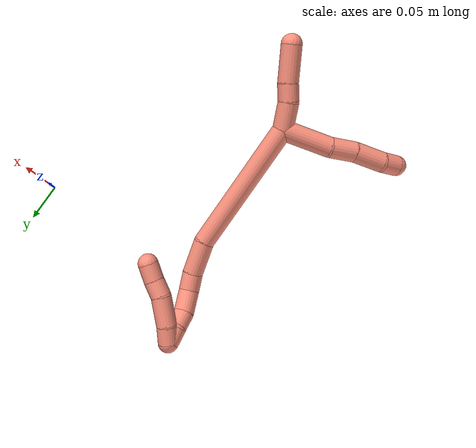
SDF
<sdf version="1.7">
 <world name="default">
  <model name="16">
   <static>0</static>
   <link name="16">
    <collision name="collision-cylinder-e_1_2_8">
     <pose>-0.026372 -0.008261 -0.012032 2.53996 -1.06533 -2.17273</pose>
     <geometry><cylinder><radius>0.0125</radius><length>0.060283</length></cylinder></geometry>
     <surface>
      <friction><ode><mu>1.16</mu><mu2>1.16</mu2><slip1>0</slip1><slip2>0</slip2></ode></friction>
      <contact><ode><kp>1e+06</kp><kd>1</kd><max_vel>0</max_vel><min_depth>0.001</min_depth></ode></contact>
     </surface>
    </collision>
    <visual name="visual-cylinder-e_1_2_8">
     <pose>-0.026372 -0.008261 -0.012032 2.53996 -1.06533 -2.17273</pose>
     <geometry><cylinder><radius>0.0125</radius><length>0.060283</length></cylinder></geometry>
     <material><ambient>1 0.576471 0.494118 1</ambient></material>
    </visual>
    <collision name="collision-cylinder-e_2_8_9">
     <pose>-0.06455 -0.023393 -0.031693 2.40833 -0.854977 -1.74093</pose>
     <geometry><cylinder><radius>0.0125</radius><length>0.031291</length></cylinder></geometry>
     <surface>
      <friction><ode><mu>1.16</mu><mu2>1.16</mu2><slip1>0</slip1><slip2>0</slip2></ode></friction>
      <contact><ode><kp>1e+06</kp><kd>1</kd><max_vel>0</max_vel><min_depth>0.001</min_depth></ode></contact>
     </surface>
    </collision>
    <visual name="visual-cylinder-e_2_8_9">
     <pose>-0.06455 -0.023393 -0.031693 2.40833 -0.854977 -1.74093</pose>
     <geometry><cylinder><radius>0.0125</radius><length>0.031291</length></cylinder></geometry>
     <material><ambient>1 0.576471 0.494118 1</ambient></material>
    </visual>
    <collision name="collision-cylinder-e_3_9_10">
     <pose>-0.091473 -0.035586 -0.048666 2.62392 -0.952512 -2.19318</pose>
     <geometry><cylinder><radius>0.0125</radius><length>0.037104</length></cylinder></geometry>
     <surface>
      <friction><ode><mu>1.16</mu><mu2>1.16</mu2><slip1>0</slip1><slip2>0</slip2></ode></friction>
      <contact><ode><kp>1e+06</kp><kd>1</kd><max_vel>0</max_vel><min_depth>0.001</min_depth></ode></contact>
     </surface>
    </collision>
    <visual name="visual-cylinder-e_3_9_10">
     <pose>-0.091473 -0.035586 -0.048666 2.62392 -0.952512 -2.19318</pose>
     <geometry><cylinder><radius>0.0125</radius><length>0.037104</length></cylinder></geometry>
     <material><ambient>1 0.576471 0.494118 1</ambient></material>
    </visual>
    <collision name="collision-cylinder-e_4_10_6">
     <pose>-0.11339 -0.045034 -0.065109 2.61504 -0.691617 -1.85701</pose>
     <geometry><cylinder><radius>0.0125</radius><length>0.021322</length></cylinder></geometry>
     <surface>
      <friction><ode><mu>1.16</mu><mu2>1.16</mu2><slip1>0</slip1><slip2>0</slip2></ode></friction>
      <contact><ode><kp>1e+06</kp><kd>1</kd><max_vel>0</max_vel><min_depth>0.001</min_depth></ode></contact>
     </surface>
    </collision>
    <visual name="visual-cylinder-e_4_10_6">
     <pose>-0.11339 -0.045034 -0.065109 2.61504 -0.691617 -1.85701</pose>
     <geometry><cylinder><radius>0.0125</radius><length>0.021322</length></cylinder></geometry>
     <material><ambient>1 0.576471 0.494118 1</ambient></material>
    </visual>
    <collision name="collision-cylinder-e_1_2_11">
     <pose>0.004817 -0.014521 0.006946 1.1246 0.290769 0.184012</pose>
     <geometry><cylinder><radius>0.0125</radius><length>0.033604</length></cylinder></geometry>
     <surface>
      <friction><ode><mu>1.16</mu><mu2>1.16</mu2><slip1>0</slip1><slip2>0</slip2></ode></friction>
      <contact><ode><kp>1e+06</kp><kd>1</kd><max_vel>0</max_vel><min_depth>0.001</min_depth></ode></contact>
     </surface>
    </collision>
    <visual name="visual-cylinder-e_1_2_11">
     <pose>0.004817 -0.014521 0.006946 1.1246 0.290769 0.184012</pose>
     <geometry><cylinder><radius>0.0125</radius><length>0.033604</length></cylinder></geometry>
     <material><ambient>1 0.576471 0.494118 1</ambient></material>
    </visual>
    <collision name="collision-cylinder-e_2_11_12">
     <pose>0.015103 -0.037248 0.018324 1.07569 0.530372 0.321209</pose>
     <geometry><cylinder><radius>0.0125</radius><length>0.021623</length></cylinder></geometry>
     <surface>
      <friction><ode><mu>1.16</mu><mu2>1.16</mu2><slip1>0</slip1><slip2>0</slip2></ode></friction>
      <contact><ode><kp>1e+06</kp><kd>1</kd><max_vel>0</max_vel><min_depth>0.001</min_depth></ode></contact>
     </surface>
    </collision>
    <visual name="visual-cylinder-e_2_11_12">
     <pose>0.015103 -0.037248 0.018324 1.07569 0.530372 0.321209</pose>
     <geometry><cylinder><radius>0.0125</radius><length>0.021623</length></cylinder></geometry>
     <material><ambient>1 0.576471 0.494118 1</ambient></material>
    </visual>
    <collision name="collision-cylinder-e_3_12_5">
     <pose>0.029511 -0.063985 0.031578 1.12643 0.410771 0.261584</pose>
     <geometry><cylinder><radius>0.0125</radius><length>0.044773</length></cylinder></geometry>
     <surface>
      <friction><ode><mu>1.16</mu><mu2>1.16</mu2><slip1>0</slip1><slip2>0</slip2></ode></friction>
      <contact><ode><kp>1e+06</kp><kd>1</kd><max_vel>0</max_vel><min_depth>0.001</min_depth></ode></contact>
     </surface>
    </collision>
    <visual name="visual-cylinder-e_3_12_5">
     <pose>0.029511 -0.063985 0.031578 1.12643 0.410771 0.261584</pose>
     <geometry><cylinder><radius>0.0125</radius><length>0.044773</length></cylinder></geometry>
     <material><ambient>1 0.576471 0.494118 1</ambient></material>
    </visual>
    <collision name="collision-cylinder-e_1_2_13">
     <pose>0.005458 0.080514 -0.018928 -1.80169 0.065891 -0.083159</pose>
     <geometry><cylinder><radius>0.0125</radius><length>0.165777</length></cylinder></geometry>
     <surface>
      <friction><ode><mu>1.16</mu><mu2>1.16</mu2><slip1>0</slip1><slip2>0</slip2></ode></friction>
      <contact><ode><kp>1e+06</kp><kd>1</kd><max_vel>0</max_vel><min_depth>0.001</min_depth></ode></contact>
     </surface>
    </collision>
    <visual name="visual-cylinder-e_1_2_13">
     <pose>0.005458 0.080514 -0.018928 -1.80169 0.065891 -0.083159</pose>
     <geometry><cylinder><radius>0.0125</radius><length>0.165777</length></cylinder></geometry>
     <material><ambient>1 0.576471 0.494118 1</ambient></material>
    </visual>
    <collision name="collision-cylinder-e_2_13_14">
     <pose>0.007246 0.180688 -0.044369 -1.89071 -0.17534 0.242234</pose>
     <geometry><cylinder><radius>0.0125</radius><length>0.042067</length></cylinder></geometry>
     <surface>
      <friction><ode><mu>1.16</mu><mu2>1.16</mu2><slip1>0</slip1><slip2>0</slip2></ode></friction>
      <contact><ode><kp>1e+06</kp><kd>1</kd><max_vel>0</max_vel><min_depth>0.001</min_depth></ode></contact>
     </surface>
    </collision>
    <visual name="visual-cylinder-e_2_13_14">
     <pose>0.007246 0.180688 -0.044369 -1.89071 -0.17534 0.242234</pose>
     <geometry><cylinder><radius>0.0125</radius><length>0.042067</length></cylinder></geometry>
     <material><ambient>1 0.576471 0.494118 1</ambient></material>
    </visual>
    <collision name="collision-cylinder-e_3_14_15">
     <pose>-0.000247 0.210552 -0.053388 -1.81155 -0.34904 0.442319</pose>
     <geometry><cylinder><radius>0.0125</radius><length>0.022361</length></cylinder></geometry>
     <surface>
      <friction><ode><mu>1.16</mu><mu2>1.16</mu2><slip1>0</slip1><slip2>0</slip2></ode></friction>
      <contact><ode><kp>1e+06</kp><kd>1</kd><max_vel>0</max_vel><min_depth>0.001</min_depth></ode></contact>
     </surface>
    </collision>
    <visual name="visual-cylinder-e_3_14_15">
     <pose>-0.000247 0.210552 -0.053388 -1.81155 -0.34904 0.442319</pose>
     <geometry><cylinder><radius>0.0125</radius><length>0.022361</length></cylinder></geometry>
     <material><ambient>1 0.576471 0.494118 1</ambient></material>
    </visual>
    <collision name="collision-cylinder-e_4_15_16">
     <pose>-0.010008 0.233521 -0.054528 -1.46423 -0.433179 0.39048</pose>
     <geometry><cylinder><radius>0.0125</radius><length>0.028291</length></cylinder></geometry>
     <surface>
      <friction><ode><mu>1.16</mu><mu2>1.16</mu2><slip1>0</slip1><slip2>0</slip2></ode></friction>
      <contact><ode><kp>1e+06</kp><kd>1</kd><max_vel>0</max_vel><min_depth>0.001</min_depth></ode></contact>
     </surface>
    </collision>
    <visual name="visual-cylinder-e_4_15_16">
     <pose>-0.010008 0.233521 -0.054528 -1.46423 -0.433179 0.39048</pose>
     <geometry><cylinder><radius>0.0125</radius><length>0.028291</length></cylinder></geometry>
     <material><ambient>1 0.576471 0.494118 1</ambient></material>
    </visual>
    <collision name="collision-cylinder-e_5_16_17">
     <pose>-0.018499 0.255418 -0.049368 -1.17698 -0.252673 0.169125</pose>
     <geometry><cylinder><radius>0.0125</radius><length>0.020425</length></cylinder></geometry>
     <surface>
      <friction><ode><mu>1.16</mu><mu2>1.16</mu2><slip1>0</slip1><slip2>0</slip2></ode></friction>
      <contact><ode><kp>1e+06</kp><kd>1</kd><max_vel>0</max_vel><min_depth>0.001</min_depth></ode></contact>
     </surface>
    </collision>
    <visual name="visual-cylinder-e_5_16_17">
     <pose>-0.018499 0.255418 -0.049368 -1.17698 -0.252673 0.169125</pose>
     <geometry><cylinder><radius>0.0125</radius><length>0.020425</length></cylinder></geometry>
     <material><ambient>1 0.576471 0.494118 1</ambient></material>
    </visual>
    <collision name="collision-cylinder-e_6_17_1">
     <pose>-0.022993 0.274838 -0.044368 -1.45415 -0.185251 0.164908</pose>
     <geometry><cylinder><radius>0.0125</radius><length>0.021078</length></cylinder></geometry>
     <surface>
      <friction><ode><mu>1.16</mu><mu2>1.16</mu2><slip1>0</slip1><slip2>0</slip2></ode></friction>
      <contact><ode><kp>1e+06</kp><kd>1</kd><max_vel>0</max_vel><min_depth>0.001</min_depth></ode></contact>
     </surface>
    </collision>
    <visual name="visual-cylinder-e_6_17_1">
     <pose>-0.022993 0.274838 -0.044368 -1.45415 -0.185251 0.164908</pose>
     <geometry><cylinder><radius>0.0125</radius><length>0.021078</length></cylinder></geometry>
     <material><ambient>1 0.576471 0.494118 1</ambient></material>
    </visual>
    <collision name="collision-cylinder-e_1_1_18">
     <pose>-0.015113 0.282717 -0.062863 3.01991 0.45952 2.63199</pose>
     <geometry><cylinder><radius>0.0125</radius><length>0.044289</length></cylinder></geometry>
     <surface>
      <friction><ode><mu>1.16</mu><mu2>1.16</mu2><slip1>0</slip1><slip2>0</slip2></ode></friction>
      <contact><ode><kp>1e+06</kp><kd>1</kd><max_vel>0</max_vel><min_depth>0.001</min_depth></ode></contact>
     </surface>
    </collision>
    <visual name="visual-cylinder-e_1_1_18">
     <pose>-0.015113 0.282717 -0.062863 3.01991 0.45952 2.63199</pose>
     <geometry><cylinder><radius>0.0125</radius><length>0.044289</length></cylinder></geometry>
     <material><ambient>1 0.576471 0.494118 1</ambient></material>
    </visual>
    <collision name="collision-cylinder-e_2_18_4">
     <pose>0.005656 0.279987 -0.108175 3.12906 0.403907 3.0804</pose>
     <geometry><cylinder><radius>0.0125</radius><length>0.055711</length></cylinder></geometry>
     <surface>
      <friction><ode><mu>1.16</mu><mu2>1.16</mu2><slip1>0</slip1><slip2>0</slip2></ode></friction>
      <contact><ode><kp>1e+06</kp><kd>1</kd><max_vel>0</max_vel><min_depth>0.001</min_depth></ode></contact>
     </surface>
    </collision>
    <visual name="visual-cylinder-e_2_18_4">
     <pose>0.005656 0.279987 -0.108175 3.12906 0.403907 3.0804</pose>
     <geometry><cylinder><radius>0.0125</radius><length>0.055711</length></cylinder></geometry>
     <material><ambient>1 0.576471 0.494118 1</ambient></material>
    </visual>
    <collision name="collision-cylinder-e_1_1_19">
     <pose>-0.019321 0.277168 -0.038679 1.05782 0.551063 0.327518</pose>
     <geometry><cylinder><radius>0.0125</radius><length>0.021443</length></cylinder></geometry>
     <surface>
      <friction><ode><mu>1.16</mu><mu2>1.16</mu2><slip1>0</slip1><slip2>0</slip2></ode></friction>
      <contact><ode><kp>1e+06</kp><kd>1</kd><max_vel>0</max_vel><min_depth>0.001</min_depth></ode></contact>
     </surface>
    </collision>
    <visual name="visual-cylinder-e_1_1_19">
     <pose>-0.019321 0.277168 -0.038679 1.05782 0.551063 0.327518</pose>
     <geometry><cylinder><radius>0.0125</radius><length>0.021443</length></cylinder></geometry>
     <material><ambient>1 0.576471 0.494118 1</ambient></material>
    </visual>
    <collision name="collision-cylinder-e_2_19_20">
     <pose>-0.002035 0.256753 -0.028159 1.11945 0.700532 0.450052</pose>
     <geometry><cylinder><radius>0.0125</radius><length>0.036212</length></cylinder></geometry>
     <surface>
      <friction><ode><mu>1.16</mu><mu2>1.16</mu2><slip1>0</slip1><slip2>0</slip2></ode></friction>
      <contact><ode><kp>1e+06</kp><kd>1</kd><max_vel>0</max_vel><min_depth>0.001</min_depth></ode></contact>
     </surface>
    </collision>
    <visual name="visual-cylinder-e_2_19_20">
     <pose>-0.002035 0.256753 -0.028159 1.11945 0.700532 0.450052</pose>
     <geometry><cylinder><radius>0.0125</radius><length>0.036212</length></cylinder></geometry>
     <material><ambient>1 0.576471 0.494118 1</ambient></material>
    </visual>
    <collision name="collision-cylinder-e_3_20_21">
     <pose>0.018147 0.239071 -0.019304 1.07646 0.961637 0.603837</pose>
     <geometry><cylinder><radius>0.0125</radius><length>0.020754</length></cylinder></geometry>
     <surface>
      <friction><ode><mu>1.16</mu><mu2>1.16</mu2><slip1>0</slip1><slip2>0</slip2></ode></friction>
      <contact><ode><kp>1e+06</kp><kd>1</kd><max_vel>0</max_vel><min_depth>0.001</min_depth></ode></contact>
     </surface>
    </collision>
    <visual name="visual-cylinder-e_3_20_21">
     <pose>0.018147 0.239071 -0.019304 1.07646 0.961637 0.603837</pose>
     <geometry><cylinder><radius>0.0125</radius><length>0.020754</length></cylinder></geometry>
     <material><ambient>1 0.576471 0.494118 1</ambient></material>
    </visual>
    <collision name="collision-cylinder-e_4_21_3">
     <pose>0.03463 0.227644 -0.012674 1.0195 0.830834 0.483516</pose>
     <geometry><cylinder><radius>0.0125</radius><length>0.021591</length></cylinder></geometry>
     <surface>
      <friction><ode><mu>1.16</mu><mu2>1.16</mu2><slip1>0</slip1><slip2>0</slip2></ode></friction>
      <contact><ode><kp>1e+06</kp><kd>1</kd><max_vel>0</max_vel><min_depth>0.001</min_depth></ode></contact>
     </surface>
    </collision>
    <visual name="visual-cylinder-e_4_21_3">
     <pose>0.03463 0.227644 -0.012674 1.0195 0.830834 0.483516</pose>
     <geometry><cylinder><radius>0.0125</radius><length>0.021591</length></cylinder></geometry>
     <material><ambient>1 0.576471 0.494118 1</ambient></material>
    </visual>
    <collision name="collision-sphere-3">
     <pose>0.042602 0.221443 -0.008862 0 -0 0</pose>
     <geometry><sphere><radius>0.0125</radius></sphere></geometry>
     <surface>
      <friction><ode><mu>1.16</mu><mu2>1.16</mu2><slip1>0</slip1><slip2>0</slip2></ode></friction>
      <contact><ode><kp>1e+06</kp><kd>1</kd><max_vel>0</max_vel><min_depth>0.001</min_depth></ode></contact>
     </surface>
    </collision>
    <visual name="visual-sphere-3">
     <pose>0.042602 0.221443 -0.008862 0 -0 0</pose>
     <geometry><sphere><radius>0.0125</radius></sphere></geometry>
     <material><ambient>1 0.576471 0.494118 1</ambient></material>
    </visual>
    <collision name="collision-sphere-21">
     <pose>0.026657 0.233844 -0.016487 0 -0 0</pose>
     <geometry><sphere><radius>0.0125</radius></sphere></geometry>
     <surface>
      <friction><ode><mu>1.16</mu><mu2>1.16</mu2><slip1>0</slip1><slip2>0</slip2></ode></friction>
      <contact><ode><kp>1e+06</kp><kd>1</kd><max_vel>0</max_vel><min_depth>0.001</min_depth></ode></contact>
     </surface>
    </collision>
    <visual name="visual-sphere-21">
     <pose>0.026657 0.233844 -0.016487 0 -0 0</pose>
     <geometry><sphere><radius>0.0125</radius></sphere></geometry>
     <material><ambient>1 0.576471 0.494118 1</ambient></material>
    </visual>
    <collision name="collision-sphere-20">
     <pose>0.009636 0.244297 -0.022121 0 -0 0</pose>
     <geometry><sphere><radius>0.0125</radius></sphere></geometry>
     <surface>
      <friction><ode><mu>1.16</mu><mu2>1.16</mu2><slip1>0</slip1><slip2>0</slip2></ode></friction>
      <contact><ode><kp>1e+06</kp><kd>1</kd><max_vel>0</max_vel><min_depth>0.001</min_depth></ode></contact>
     </surface>
    </collision>
    <visual name="visual-sphere-20">
     <pose>0.009636 0.244297 -0.022121 0 -0 0</pose>
     <geometry><sphere><radius>0.0125</radius></sphere></geometry>
     <material><ambient>1 0.576471 0.494118 1</ambient></material>
    </visual>
    <collision name="collision-sphere-19">
     <pose>-0.013707 0.269209 -0.034196 0 -0 0</pose>
     <geometry><sphere><radius>0.0125</radius></sphere></geometry>
     <surface>
      <friction><ode><mu>1.16</mu><mu2>1.16</mu2><slip1>0</slip1><slip2>0</slip2></ode></friction>
      <contact><ode><kp>1e+06</kp><kd>1</kd><max_vel>0</max_vel><min_depth>0.001</min_depth></ode></contact>
     </surface>
    </collision>
    <visual name="visual-sphere-19">
     <pose>-0.013707 0.269209 -0.034196 0 -0 0</pose>
     <geometry><sphere><radius>0.0125</radius></sphere></geometry>
     <material><ambient>1 0.576471 0.494118 1</ambient></material>
    </visual>
    <collision name="collision-sphere-11">
     <pose>0.009634 -0.029042 0.013893 0 -0 0</pose>
     <geometry><sphere><radius>0.0125</radius></sphere></geometry>
     <surface>
      <friction><ode><mu>1.16</mu><mu2>1.16</mu2><slip1>0</slip1><slip2>0</slip2></ode></friction>
      <contact><ode><kp>1e+06</kp><kd>1</kd><max_vel>0</max_vel><min_depth>0.001</min_depth></ode></contact>
     </surface>
    </collision>
    <visual name="visual-sphere-11">
     <pose>0.009634 -0.029042 0.013893 0 -0 0</pose>
     <geometry><sphere><radius>0.0125</radius></sphere></geometry>
     <material><ambient>1 0.576471 0.494118 1</ambient></material>
    </visual>
    <collision name="collision-sphere-6">
     <pose>-0.120189 -0.049161 -0.072208 0 -0 0</pose>
     <geometry><sphere><radius>0.0125</radius></sphere></geometry>
     <surface>
      <friction><ode><mu>1.16</mu><mu2>1.16</mu2><slip1>0</slip1><slip2>0</slip2></ode></friction>
      <contact><ode><kp>1e+06</kp><kd>1</kd><max_vel>0</max_vel><min_depth>0.001</min_depth></ode></contact>
     </surface>
    </collision>
    <visual name="visual-sphere-6">
     <pose>-0.120189 -0.049161 -0.072208 0 -0 0</pose>
     <geometry><sphere><radius>0.0125</radius></sphere></geometry>
     <material><ambient>1 0.576471 0.494118 1</ambient></material>
    </visual>
    <collision name="collision-sphere-10">
     <pose>-0.10659 -0.040907 -0.05801 0 -0 0</pose>
     <geometry><sphere><radius>0.0125</radius></sphere></geometry>
     <surface>
      <friction><ode><mu>1.16</mu><mu2>1.16</mu2><slip1>0</slip1><slip2>0</slip2></ode></friction>
      <contact><ode><kp>1e+06</kp><kd>1</kd><max_vel>0</max_vel><min_depth>0.001</min_depth></ode></contact>
     </surface>
    </collision>
    <visual name="visual-sphere-10">
     <pose>-0.10659 -0.040907 -0.05801 0 -0 0</pose>
     <geometry><sphere><radius>0.0125</radius></sphere></geometry>
     <material><ambient>1 0.576471 0.494118 1</ambient></material>
    </visual>
    <collision name="collision-sphere-9">
     <pose>-0.076355 -0.030264 -0.039321 0 -0 0</pose>
     <geometry><sphere><radius>0.0125</radius></sphere></geometry>
     <surface>
      <friction><ode><mu>1.16</mu><mu2>1.16</mu2><slip1>0</slip1><slip2>0</slip2></ode></friction>
      <contact><ode><kp>1e+06</kp><kd>1</kd><max_vel>0</max_vel><min_depth>0.001</min_depth></ode></contact>
     </surface>
    </collision>
    <visual name="visual-sphere-9">
     <pose>-0.076355 -0.030264 -0.039321 0 -0 0</pose>
     <geometry><sphere><radius>0.0125</radius></sphere></geometry>
     <material><ambient>1 0.576471 0.494118 1</ambient></material>
    </visual>
    <collision name="collision-sphere-2">
     <geometry><sphere><radius>0.0125</radius></sphere></geometry>
     <surface>
      <friction><ode><mu>1.16</mu><mu2>1.16</mu2><slip1>0</slip1><slip2>0</slip2></ode></friction>
      <contact><ode><kp>1e+06</kp><kd>1</kd><max_vel>0</max_vel><min_depth>0.001</min_depth></ode></contact>
     </surface>
    </collision>
    <visual name="visual-sphere-2">
     <geometry><sphere><radius>0.0125</radius></sphere></geometry>
     <material><ambient>1 0.576471 0.494118 1</ambient></material>
    </visual>
    <collision name="collision-sphere-8">
     <pose>-0.052745 -0.016521 -0.024065 0 -0 0</pose>
     <geometry><sphere><radius>0.0125</radius></sphere></geometry>
     <surface>
      <friction><ode><mu>1.16</mu><mu2>1.16</mu2><slip1>0</slip1><slip2>0</slip2></ode></friction>
      <contact><ode><kp>1e+06</kp><kd>1</kd><max_vel>0</max_vel><min_depth>0.001</min_depth></ode></contact>
     </surface>
    </collision>
    <visual name="visual-sphere-8">
     <pose>-0.052745 -0.016521 -0.024065 0 -0 0</pose>
     <geometry><sphere><radius>0.0125</radius></sphere></geometry>
     <material><ambient>1 0.576471 0.494118 1</ambient></material>
    </visual>
    <collision name="collision-sphere-12">
     <pose>0.020572 -0.045454 0.022755 0 -0 0</pose>
     <geometry><sphere><radius>0.0125</radius></sphere></geometry>
     <surface>
      <friction><ode><mu>1.16</mu><mu2>1.16</mu2><slip1>0</slip1><slip2>0</slip2></ode></friction>
      <contact><ode><kp>1e+06</kp><kd>1</kd><max_vel>0</max_vel><min_depth>0.001</min_depth></ode></contact>
     </surface>
    </collision>
    <visual name="visual-sphere-12">
     <pose>0.020572 -0.045454 0.022755 0 -0 0</pose>
     <geometry><sphere><radius>0.0125</radius></sphere></geometry>
     <material><ambient>1 0.576471 0.494118 1</ambient></material>
    </visual>
    <collision name="collision-sphere-5">
     <pose>0.038451 -0.082516 0.040401 0 -0 0</pose>
     <geometry><sphere><radius>0.0125</radius></sphere></geometry>
     <surface>
      <friction><ode><mu>1.16</mu><mu2>1.16</mu2><slip1>0</slip1><slip2>0</slip2></ode></friction>
      <contact><ode><kp>1e+06</kp><kd>1</kd><max_vel>0</max_vel><min_depth>0.001</min_depth></ode></contact>
     </surface>
    </collision>
    <visual name="visual-sphere-5">
     <pose>0.038451 -0.082516 0.040401 0 -0 0</pose>
     <geometry><sphere><radius>0.0125</radius></sphere></geometry>
     <material><ambient>1 0.576471 0.494118 1</ambient></material>
    </visual>
    <collision name="collision-sphere-13">
     <pose>0.010915 0.161027 -0.037856 0 -0 0</pose>
     <geometry><sphere><radius>0.0125</radius></sphere></geometry>
     <surface>
      <friction><ode><mu>1.16</mu><mu2>1.16</mu2><slip1>0</slip1><slip2>0</slip2></ode></friction>
      <contact><ode><kp>1e+06</kp><kd>1</kd><max_vel>0</max_vel><min_depth>0.001</min_depth></ode></contact>
     </surface>
    </collision>
    <visual name="visual-sphere-13">
     <pose>0.010915 0.161027 -0.037856 0 -0 0</pose>
     <geometry><sphere><radius>0.0125</radius></sphere></geometry>
     <material><ambient>1 0.576471 0.494118 1</ambient></material>
    </visual>
    <collision name="collision-sphere-14">
     <pose>0.003577 0.200348 -0.050883 0 -0 0</pose>
     <geometry><sphere><radius>0.0125</radius></sphere></geometry>
     <surface>
      <friction><ode><mu>1.16</mu><mu2>1.16</mu2><slip1>0</slip1><slip2>0</slip2></ode></friction>
      <contact><ode><kp>1e+06</kp><kd>1</kd><max_vel>0</max_vel><min_depth>0.001</min_depth></ode></contact>
     </surface>
    </collision>
    <visual name="visual-sphere-14">
     <pose>0.003577 0.200348 -0.050883 0 -0 0</pose>
     <geometry><sphere><radius>0.0125</radius></sphere></geometry>
     <material><ambient>1 0.576471 0.494118 1</ambient></material>
    </visual>
    <collision name="collision-sphere-15">
     <pose>-0.004071 0.220755 -0.055893 0 -0 0</pose>
     <geometry><sphere><radius>0.0125</radius></sphere></geometry>
     <surface>
      <friction><ode><mu>1.16</mu><mu2>1.16</mu2><slip1>0</slip1><slip2>0</slip2></ode></friction>
      <contact><ode><kp>1e+06</kp><kd>1</kd><max_vel>0</max_vel><min_depth>0.001</min_depth></ode></contact>
     </surface>
    </collision>
    <visual name="visual-sphere-15">
     <pose>-0.004071 0.220755 -0.055893 0 -0 0</pose>
     <geometry><sphere><radius>0.0125</radius></sphere></geometry>
     <material><ambient>1 0.576471 0.494118 1</ambient></material>
    </visual>
    <collision name="collision-sphere-16">
     <pose>-0.015946 0.246287 -0.053162 0 -0 0</pose>
     <geometry><sphere><radius>0.0125</radius></sphere></geometry>
     <surface>
      <friction><ode><mu>1.16</mu><mu2>1.16</mu2><slip1>0</slip1><slip2>0</slip2></ode></friction>
      <contact><ode><kp>1e+06</kp><kd>1</kd><max_vel>0</max_vel><min_depth>0.001</min_depth></ode></contact>
     </surface>
    </collision>
    <visual name="visual-sphere-16">
     <pose>-0.015946 0.246287 -0.053162 0 -0 0</pose>
     <geometry><sphere><radius>0.0125</radius></sphere></geometry>
     <material><ambient>1 0.576471 0.494118 1</ambient></material>
    </visual>
    <collision name="collision-sphere-17">
     <pose>-0.021052 0.26455 -0.045573 0 -0 0</pose>
     <geometry><sphere><radius>0.0125</radius></sphere></geometry>
     <surface>
      <friction><ode><mu>1.16</mu><mu2>1.16</mu2><slip1>0</slip1><slip2>0</slip2></ode></friction>
      <contact><ode><kp>1e+06</kp><kd>1</kd><max_vel>0</max_vel><min_depth>0.001</min_depth></ode></contact>
     </surface>
    </collision>
    <visual name="visual-sphere-17">
     <pose>-0.021052 0.26455 -0.045573 0 -0 0</pose>
     <geometry><sphere><radius>0.0125</radius></sphere></geometry>
     <material><ambient>1 0.576471 0.494118 1</ambient></material>
    </visual>
    <collision name="collision-sphere-1">
     <pose>-0.024934 0.285127 -0.043162 0 -0 0</pose>
     <geometry><sphere><radius>0.0125</radius></sphere></geometry>
     <surface>
      <friction><ode><mu>1.16</mu><mu2>1.16</mu2><slip1>0</slip1><slip2>0</slip2></ode></friction>
      <contact><ode><kp>1e+06</kp><kd>1</kd><max_vel>0</max_vel><min_depth>0.001</min_depth></ode></contact>
     </surface>
    </collision>
    <visual name="visual-sphere-1">
     <pose>-0.024934 0.285127 -0.043162 0 -0 0</pose>
     <geometry><sphere><radius>0.0125</radius></sphere></geometry>
     <material><ambient>1 0.576471 0.494118 1</ambient></material>
    </visual>
    <collision name="collision-sphere-18">
     <pose>-0.005292 0.280308 -0.082563 0 -0 0</pose>
     <geometry><sphere><radius>0.0125</radius></sphere></geometry>
     <surface>
      <friction><ode><mu>1.16</mu><mu2>1.16</mu2><slip1>0</slip1><slip2>0</slip2></ode></friction>
      <contact><ode><kp>1e+06</kp><kd>1</kd><max_vel>0</max_vel><min_depth>0.001</min_depth></ode></contact>
     </surface>
    </collision>
    <visual name="visual-sphere-18">
     <pose>-0.005292 0.280308 -0.082563 0 -0 0</pose>
     <geometry><sphere><radius>0.0125</radius></sphere></geometry>
     <material><ambient>1 0.576471 0.494118 1</ambient></material>
    </visual>
    <collision name="collision-sphere-4">
     <pose>0.016604 0.279666 -0.133787 0 -0 0</pose>
     <geometry><sphere><radius>0.0125</radius></sphere></geometry>
     <surface>
      <friction><ode><mu>1.16</mu><mu2>1.16</mu2><slip1>0</slip1><slip2>0</slip2></ode></friction>
      <contact><ode><kp>1e+06</kp><kd>1</kd><max_vel>0</max_vel><min_depth>0.001</min_depth></ode></contact>
     </surface>
    </collision>
    <visual name="visual-sphere-4">
     <pose>0.016604 0.279666 -0.133787 0 -0 0</pose>
     <geometry><sphere><radius>0.0125</radius></sphere></geometry>
     <material><ambient>1 0.576471 0.494118 1</ambient></material>
    </visual>
    <inertial>
     <pose>-0.009695 0.118456 -0.031848 0 -0 0</pose>
     <mass>0.75</mass>
     <inertia>
      <ixx>0.000358</ixx>
      <ixy>0</ixy>
      <ixz>0</ixz>
      <iyy>-4.5e-05</iyy>
      <iyz>0</iyz>
      <izz>-0.000388</izz>
     </inertia>
    </inertial>
   </link>
   <pose>-0.216784 -0.207416 0.164815 -0.073623 0.265628 -0.02901</pose>
  </model>
 </world>
</sdf>
